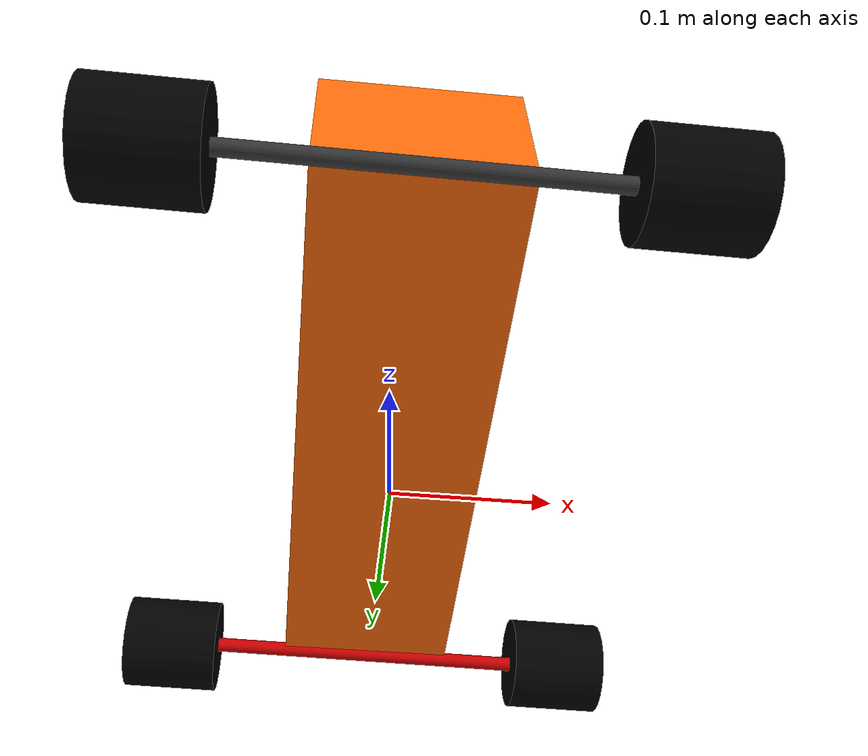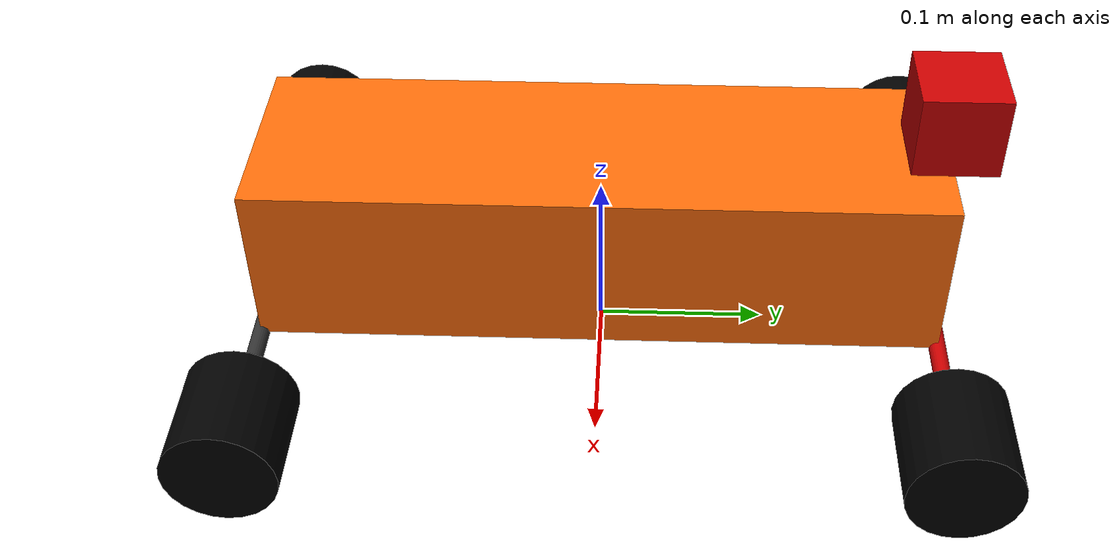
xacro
<?xml version="1.0"?>

<!-- chaosbot: Robot for 2018 SparkFun AVC Challenge in the Logisitics Class category -->
<!--           Following some of the design elements from OSRF's Car Demo project with a Prius -->
<robot name="chaosbot" xmlns:xacro="http://www.ros.org/wiki/xacro">

  <!-- Constants for robot dimensions -->
  <xacro:property name="PI" value="3.1415926535897931"/>
  <xacro:property name="mass" value="1" /> <!-- arbitrary value for mass -->
  <xacro:property name="width_chassis" value="0.12" /> <!-- Rectangular dimensions (widthxdepth) of chassis -->
  <xacro:property name="depth_chassis" value="0.4" /> <!-- Rectangular dimensions (widthxdepth) of chassis -->
  <xacro:property name="height_chassis" value="0.1" /> <!-- Robot chassis -->
  <xacro:property name="length_wheelaxle" value="0.22" /> <!-- Dimensions (lengthxradius) of wheel axles -->
  <xacro:property name="radius_wheelaxle" value="0.005" /> <!-- Rectangular dimensions (lengthxradius) of chassis -->
  <xacro:property name="width_wheel" value="0.065" /> <!-- Dimensions (widthxradius) of wheels -->
  <xacro:property name="radius_wheel" value="0.0325" /> <!-- Dimension (widthxradius) of wheels -->

  <xacro:property name="width_beams" value="0.1" /> <!-- Square dimensions (widthxwidth) of beams -->
  <xacro:property name="height_chest" value="2" /> <!-- Chest -->
  <xacro:property name="height_bicep" value="1" /> <!-- Bicep -->
  <xacro:property name="height_forearm" value="1" /> <!-- Forearm -->
  <xacro:property name="height_hand" value="1" /> <!-- Hand -->
  <xacro:property name="camera_size" value="0.05" /> <!-- Size of square 'camera' box -->
  <xacro:property name="axel_offset" value="0.05" /> <!-- Space btw top of beam and the each joint -->

  <!-- Import all Gazebo-customization elements, including Gazebo colors -->
  <xacro:include filename="$(find chaosbot_description)/urdf/chaosbot.gazebo" />
  <!-- Import Rviz colors -->
  <xacro:include filename="$(find chaosbot_description)/urdf/materials.xacro" />

  <link name="base_link">
    <inertial>
      <origin xyz="0 0 0" rpy="0 0 0"/>
      <mass value="1e-5" />
      <inertia ixx="1e-6" ixy="0" ixz="0" iyy="1e-6" iyz="0" izz="1e-6" />
    </inertial>
  </link>

  <!-- Robot Chassis -->
  <link name="chassis">
    <collision>
      <origin xyz="0 0 0" rpy="0 0 0"/>
      <geometry>
        <box size="${width_chassis} ${depth_chassis} ${height_chassis}"/>
      </geometry>
    </collision>
    <visual>
      <origin xyz="0 0 0" rpy="0 0 0"/>
      <geometry>
        <box size="${width_chassis} ${depth_chassis} ${height_chassis}"/>
      </geometry>
      <material name="orange"/>
    </visual>
    <inertial>
      <origin xyz="0 0 0" rpy="0 0 0"/>
      <mass value="${mass}"/>
      <inertia
	  ixx="${mass / 12.0 * (width_chassis*depth_chassis + height_chassis*height_chassis)}" ixy="0.0" ixz="0.0"
	  iyy="${mass / 12.0 * (height_chassis*height_chassis + width_chassis*depth_chassis)}" iyz="0.0"
	  izz="${mass / 12.0 * (width_chassis*depth_chassis + width_chassis*depth_chassis)}"/>
    </inertial>
  </link>

  <joint name="base_link_connection" type="fixed">
    <parent link="base_link"/>
    <child link="chassis"/>
    <origin xyz="0 0 ${height_chassis/2 + radius_wheel}" rpy="0 0 0"/>
    <axis xyz="0 0 1"/>
  </joint>

  <!-- Front wheel axle -->
  <link name="front_wheelaxle">
    <collision>
      <origin xyz="0 0 0" rpy="0 4.725 0"/>
      <geometry>
        <cylinder length="${length_wheelaxle}" radius="${radius_wheelaxle}"/>
      </geometry>
    </collision>
    <visual>
      <origin xyz="0 0 0" rpy="0 4.725 0"/>
      <geometry>
        <cylinder length="${length_wheelaxle}" radius="${radius_wheelaxle}"/>
      </geometry>
      <material name="red"/>
    </visual>
    <inertial>
      <origin xyz="0 0 0" rpy="0 4.725 0"/>
      <mass value="0" />
      <inertia ixx="1e-6" ixy="0" ixz="0" iyy="1e-6" iyz="0" izz="1e-6" />
    </inertial>
  </link>

  <!-- Back wheel axle -->
  <link name="back_wheelaxle">
    <collision>
      <origin xyz="0 0 0" rpy="0 4.725 0"/>
      <geometry>
        <cylinder length="${length_wheelaxle}" radius="${radius_wheelaxle}"/>
      </geometry>
    </collision>
    <visual>
      <origin xyz="0 0 0" rpy="0 4.725 0"/>
      <geometry>
        <cylinder length="${length_wheelaxle}" radius="${radius_wheelaxle}"/>
      </geometry>
      <material name="grey"/>
    </visual>
    <inertial>
      <origin xyz="0 0 0" rpy="0 4.725 0"/>
      <mass value="0" />
      <inertia ixx="1e-6" ixy="0" ixz="0" iyy="1e-6" iyz="0" izz="1e-6" />
    </inertial>
  </link>

  <joint name="chassis_to_front_wheelaxle" type="fixed">
    <parent link="chassis"/>
    <child link="front_wheelaxle"/>
    <origin xyz="0 ${depth_chassis/2} ${-height_chassis/2}" rpy="0 0 0"/>
    <dynamics damping="0.7"/>
  </joint>
  <joint name="chassis_to_back_wheelaxle" type="fixed">
    <parent link="chassis"/>
    <child link="back_wheelaxle"/>
    <origin xyz="0 ${-depth_chassis/2} ${-height_chassis/2}" rpy="0 0 0"/>
    <dynamics damping="0.7"/>
  </joint>

  <!-- Front left wheel -->
  <link name="front_left_wheel">
    <collision>
      <origin xyz="${width_wheel/2} 0 0" rpy="0 4.725 0"/>
      <geometry>
        <cylinder length="${width_wheel}" radius="${radius_wheel}"/>
      </geometry>
    </collision>
    <visual>
      <origin xyz="${width_wheel/2} 0 0" rpy="0 4.725 0"/>
      <geometry>
        <cylinder length="${width_wheel}" radius="${radius_wheel}"/>
      </geometry>
      <material name="black"/>
    </visual>
    <inertial>
      <origin xyz="${width_wheel/2} 0 0" rpy="0 4.725 0"/>
      <mass value="0"/>
      <inertia
	  ixx="0.0" ixy="0.0" ixz="0.0"
	  iyy="0.0" iyz="0.0"
	  izz="0.0"/>
    </inertial>
  </link>

  <!-- Front right wheel -->
  <link name="front_right_wheel">
    <collision>
      <origin xyz="${-width_wheel/2} 0 0" rpy="0 4.725 0"/>
      <geometry>
        <cylinder length="${width_wheel}" radius="${radius_wheel}"/>
      </geometry>
    </collision>
    <visual>
      <origin xyz="${-width_wheel/2} 0 0" rpy="0 4.725 0"/>
      <geometry>
        <cylinder length="${width_wheel}" radius="${radius_wheel}"/>
      </geometry>
      <material name="black"/>
    </visual>
    <inertial>
      <origin xyz="${-width_wheel/2} 0 0" rpy="0 4.725 0"/>
      <mass value="0"/>
      <inertia
	  ixx="0.0" ixy="0.0" ixz="0.0"
	  iyy="0.0" iyz="0.0"
	  izz="0.0"/>
    </inertial>
  </link>

  <!-- Back left wheel -->
  <link name="back_left_wheel">
    <collision>
      <origin xyz="${width_wheel/2} 0 0" rpy="0 4.725 0"/>
      <geometry>
        <cylinder length="${width_wheel}" radius="${radius_wheel}"/>
      </geometry>
    </collision>
    <visual>
      <origin xyz="${width_wheel/2} 0 0" rpy="0 4.725 0"/>
      <geometry>
        <cylinder length="${width_wheel}" radius="${radius_wheel}"/>
      </geometry>
      <material name="black"/>
    </visual>
    <inertial>
      <origin xyz="${width_wheel/2} 0 0" rpy="0 4.725 0"/>
      <mass value="0"/>
      <inertia
	  ixx="0.0" ixy="0.0" ixz="0.0"
	  iyy="0.0" iyz="0.0"
	  izz="0.0"/>
    </inertial>
  </link>

  <!-- Back right wheel -->
  <link name="back_right_wheel">
    <collision>
      <origin xyz="${-width_wheel/2} 0 0" rpy="0 4.725 0"/>
      <geometry>
        <cylinder length="${width_wheel}" radius="${radius_wheel}"/>
      </geometry>
    </collision>
    <visual>
      <origin xyz="${-width_wheel/2} 0 0" rpy="0 4.725 0"/>
      <geometry>
        <cylinder length="${width_wheel}" radius="${radius_wheel}"/>
      </geometry>
      <material name="black"/>
    </visual>
    <inertial>
      <origin xyz="${-width_wheel/2} 0 0" rpy="0 4.725 0"/>
      <mass value="0"/>
      <inertia
	  ixx="0.0" ixy="0.0" ixz="0.0"
	  iyy="0.0" iyz="0.0"
	  izz="0.0"/>
    </inertial>
  </link>

<!-- Front steering and spin on wheels -->
  <joint name="front_left_wheel_steer_spin" type="continuous">
    <parent link="front_wheelaxle"/>
    <child link="front_left_wheel"/>
    <origin xyz="${length_wheelaxle/2} 0 0" rpy="0 0 0"/>
    <axis xyz="0 -1 0"/>
    <axis2 xyz="0 0 1"/>
    <dynamics damping="0.7"/>
  </joint>

  <joint name="front_right_wheel_steer_spin" type="continuous">
    <parent link="front_wheelaxle"/>
    <child link="front_right_wheel"/>
    <origin xyz="${-length_wheelaxle/2} 0 0" rpy="0 0 0"/>
    <axis xyz="0 -1 0"/>
    <axis2 xyz="0 0 1"/>
    <dynamics damping="0.7"/>
  </joint>

<!-- Spin on back wheels -->
  <joint name="back_left_wheel_spin" type="continuous">
    <parent link="back_wheelaxle"/>
    <child link="back_left_wheel"/>
    <origin xyz="${length_wheelaxle/2} 0 0" rpy="0 0 0"/>
    <axis xyz="0 0 1"/>
    <dynamics damping="0.7"/>
  </joint>
  <joint name="back_right_wheel_spin" type="continuous">
    <parent link="back_wheelaxle"/>
    <child link="back_right_wheel"/>
    <origin xyz="${-length_wheelaxle/2} 0 0" rpy="0 0 0"/>
    <axis xyz="0 0 1"/>
    <dynamics damping="0.7"/>
  </joint>

  <joint name="camera_mount_front" type="continuous">
    <parent link="chassis"/>
    <child link="camera_front"/>
    <origin xyz="0 ${depth_chassis/2} ${height_chassis}" rpy="0 0 0"/>
    <dynamics damping="0.7"/>
  </joint>

  <!-- Front camera -->
  <link name="camera_front">
    <collision>
      <origin xyz="0 0 ${-camera_size/2}" rpy="0 0 0"/>
      <geometry>
	<box size="${camera_size} ${camera_size} ${camera_size}"/>
      </geometry>
    </collision>
    <visual>
      <origin xyz="0 0 ${-camera_size/2}" rpy="0 0 0"/>
      <geometry>
	<box size="${camera_size} ${camera_size} ${camera_size}"/>
      </geometry>
      <material name="red"/>
    </visual>
    <inertial>
      <mass value="1e-5" />
      <origin xyz="0 0 ${-camera_size/2}" rpy="0 0 0"/>
      <inertia ixx="1e-6" ixy="0" ixz="0" iyy="1e-6" iyz="0" izz="1e-6" />
    </inertial>
  </link>
  <!-- generate an optical frame http://www.ros.org/reps/rep-0103.html#suffix-frames
      so that ros and opencv can operate on the camera frame correctly -->
  <link name="camera_front_optical">
  </link>
  <joint name="camera_optical_joint" type="fixed">
    <!-- these values have to be these values otherwise the gazebo camera image
        won't be aligned properly with the frame it is supposedly originating from -->
    <origin xyz="0 0 0" rpy="${-pi/2} 0 ${-pi/2}"/>
    <parent link="camera_front"/>
    <child link="camera_front_optical"/>
  </joint>

</robot>

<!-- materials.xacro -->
<robot>

  <material name="black">
    <color rgba="0.0 0.0 0.0 1.0"/>
  </material>

  <material name="blue">
    <color rgba="0.0 0.0 0.8 1.0"/>
  </material>

  <material name="green">
    <color rgba="0.0 0.8 0.0 1.0"/>
  </material>

  <material name="grey">
    <color rgba="0.2 0.2 0.2 1.0"/>
  </material>

  <material name="orange">
    <color rgba="${255/255} ${108/255} ${10/255} 1.0"/>
  </material>

  <material name="yellow">
    <color rgba="1 1 0 1"/>
  </material>

  <material name="brown">
    <color rgba="${222/255} ${207/255} ${195/255} 1.0"/>
  </material>

  <material name="red">
    <color rgba="0.8 0.0 0.0 1.0"/>
  </material>

  <material name="white">
    <color rgba="1.0 1.0 1.0 1.0"/>
  </material>

</robot>
